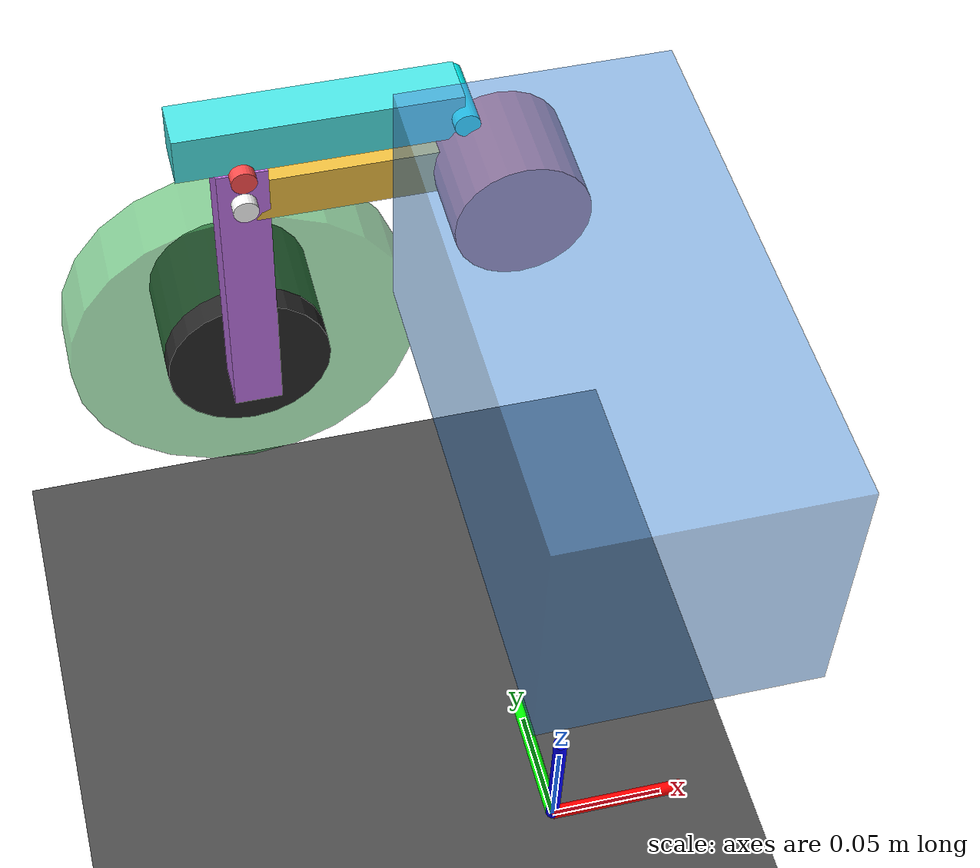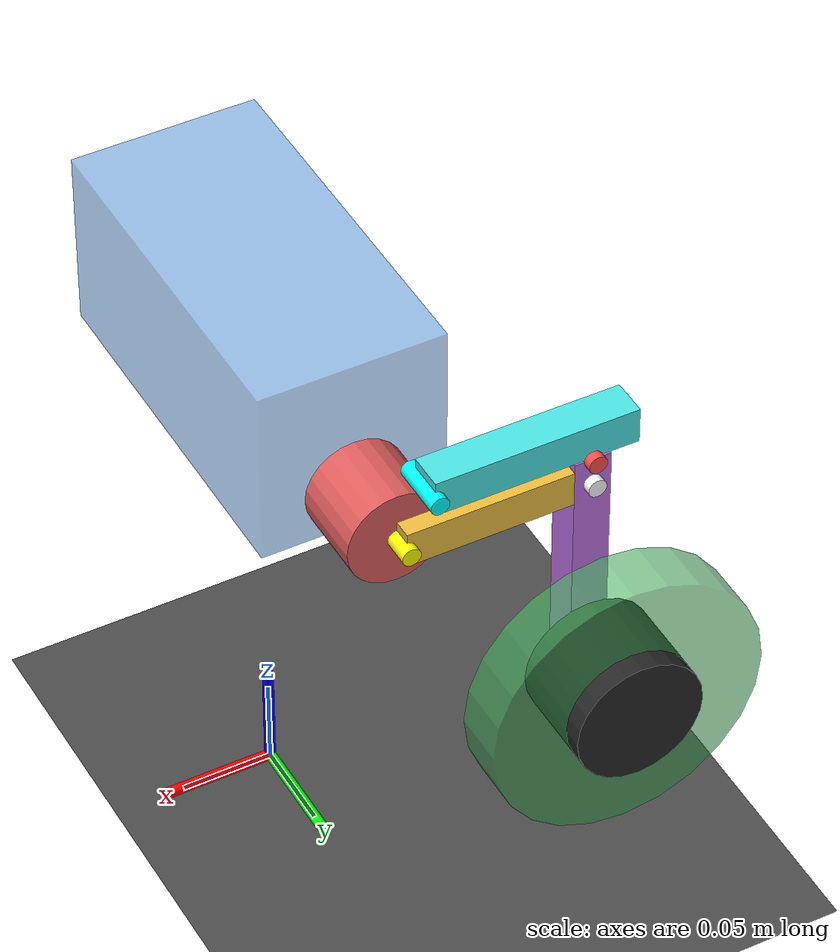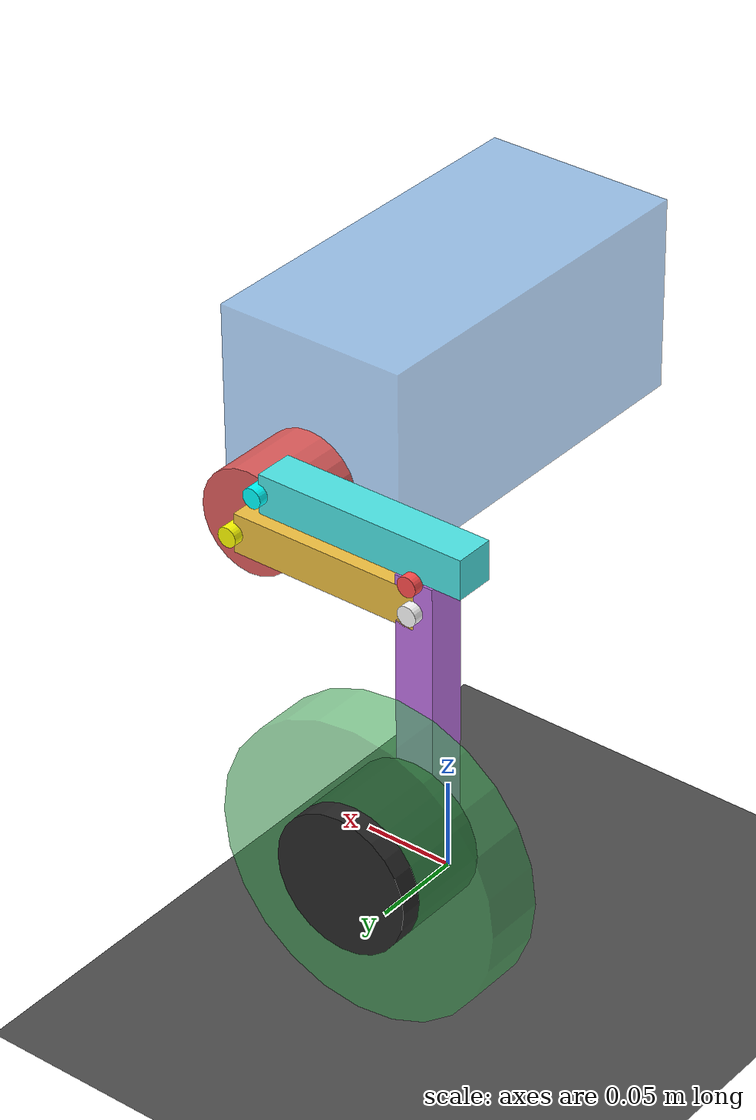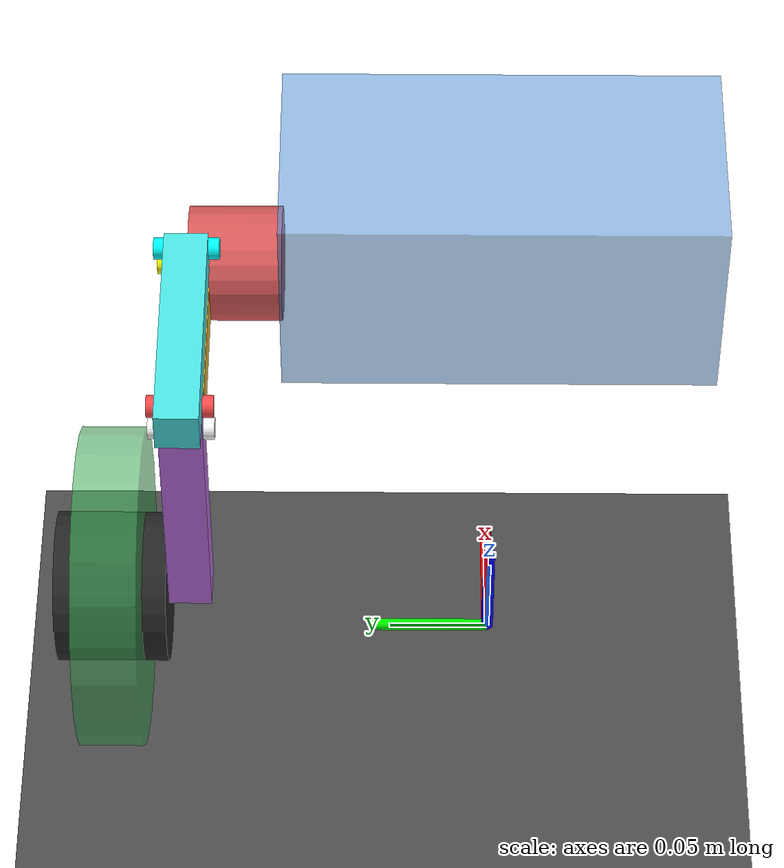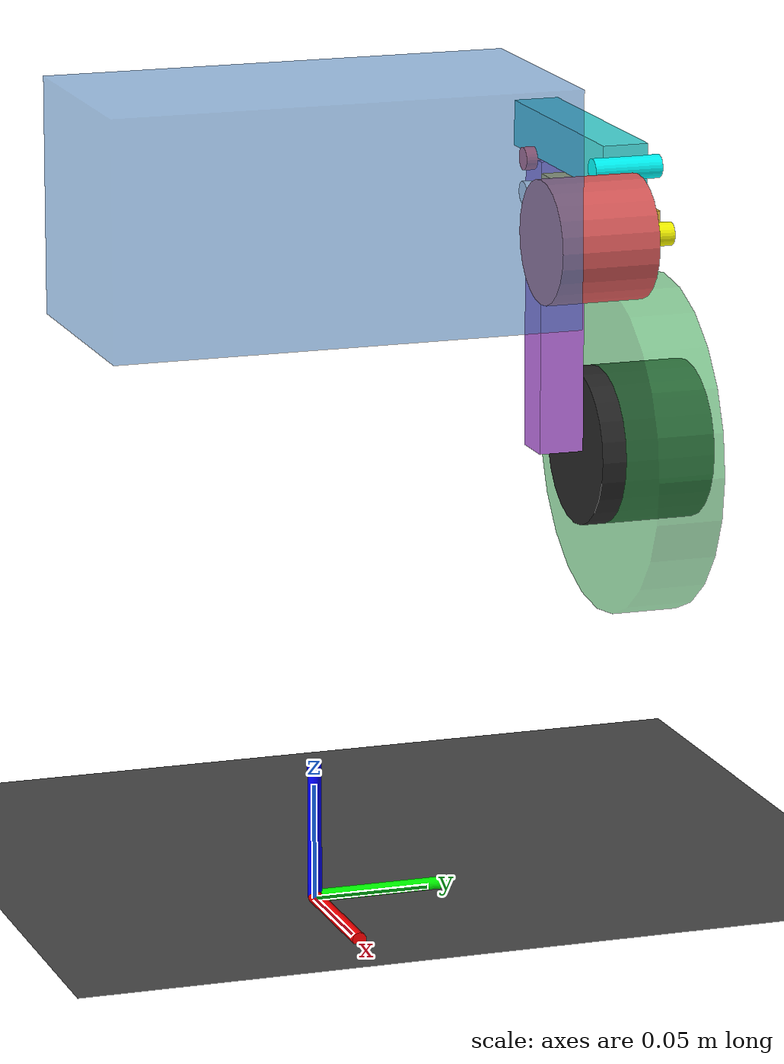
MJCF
<mujoco model="wheeled_leg_robot">

  <option gravity="0 0 -9.81" timestep="0.00005"/>

  <visual>
    <global offwidth="1280" offheight="720" azimuth="270" elevation="0"/>
  </visual>

  <worldbody>

    <light name="main" pos="0 -1 1" dir="0 1 -1" diffuse="0.8 0.8 0.8"/>
    <light name="fill" pos="0  1 1" dir="0 -1 -1" diffuse="0.3 0.3 0.3"/>

    <!-- Ground plane — no collision for this kinematic demo -->
    <geom name="ground" type="plane" pos="0 0 0" size="1 1 0.01"
          rgba="0.3 0.3 0.3 1" contype="0" conaffinity="0"/>

    <!-- XYZ axis markers at origin (visual only) -->
    <!-- X = red, Y = green, Z = blue  |  length 60 mm, radius 3 mm -->
    <geom name="axis_x" type="cylinder" fromto="0 0 0.001  0.06 0 0.001"
          size="0.003" rgba="1 0 0 1" contype="0" conaffinity="0" mass="0"/>
    <geom name="axis_y" type="cylinder" fromto="0 0 0.001  0 0.06 0.001"
          size="0.003" rgba="0 1 0 1" contype="0" conaffinity="0" mass="0"/>
    <geom name="axis_z" type="cylinder" fromto="0 0 0.001  0 0 0.061"
          size="0.003" rgba="0 0 1 1" contype="0" conaffinity="0" mass="0"/>

    <!-- ── Body box ── FIXED to world (no joint) ──────────────────────── -->
    <body name="box" pos="0 0 0.30">

      <!-- Box: 100 mm (X) × 200 mm (Y) × 100 mm (Z), semi-transparent -->
      <geom name="box_geom" type="box"
            size="0.05 0.10 0.05"
            rgba="0.29 0.56 0.85 0.55"
            contype="0" conaffinity="0"
            mass="1.260"/>

      <!-- Hip motor AK45-10: Ø53 mm × 43 mm, mounted on +Y face of box.
           Box +Y face at y=+0.10.  Motor half-length=21.5 mm → centre y=0.1215.
           Outer face (femur pivot A) at y=0.1430. -->
      <geom name="motor_geom" type="cylinder"
            pos="0 0.1215 -0.0235"
            euler="90 0 0"
            size="0.0265 0.0215"
            rgba="0.87 0.36 0.36 0.95"
            contype="0" conaffinity="0"
            mass="0"/>

      <!-- ── Passive coupler pivot F ─────────────────────────────────── -->
      <!-- F = A + (−15 mm, 0, +26 mm)  →  box frame: (−0.015, 0.1430, +0.0025) -->
      <body name="coupler" pos="-0.015 0.1430 0.0025">

        <joint name="hinge_F" type="hinge"
               axis="0 1 0"
               pos="0 0 0"
               damping="25"/>

        <!-- Hinge pin at F (cyan) -->
        <geom type="cylinder" pos="0 0 0" euler="90 0 0" size="0.005 0.015"
              rgba="0 1 1 0.9" contype="0" conaffinity="0" mass="0"/>
        <!-- Coupler link: 110 mm along −X, 10 mm cross-section, cyan -->
        <geom name="coupler_geom" type="box"
              pos="-0.055 0 0"
              size="0.055 0.01 0.01"
              rgba="0.30 0.90 0.90 1.0"
              contype="0" conaffinity="0"
              mass="0.015"/>

      </body><!-- coupler -->

      <!-- ── Femur ─────────────────────────────────────────────────────── -->
      <!-- pivot A at outer face of motor (y=0.1430, z=−0.0235 in box frame) -->
      <body name="femur" pos="0 0.1430 -0.0235">

        <joint name="hip" type="hinge"
               axis="0 1 0"
               pos="0 0 0"
               range="-180 180"
               armature="0.01"
               damping="5"/>

        <!-- Hinge pin at A (yellow) -->
        <geom type="cylinder" pos="0 0 0" euler="90 0 0" size="0.005 0.015"
              rgba="1 1 0 0.9" contype="0" conaffinity="0" mass="0"/>
        <!-- Femur box: pivot A → knee C, 100 mm along −X, 10 mm cross-section -->
        <geom name="femur_geom" type="box"
              pos="-0.05 0 0"
              size="0.05 0.01 0.01"
              rgba="0.94 0.75 0.25 1.0"
              contype="0" conaffinity="0"
              mass="0.025"/>
        <!-- Hinge pin at C/knee (white) -->
        <geom type="cylinder" pos="-0.1 0 0" euler="90 0 0" size="0.005 0.015"
              rgba="1 1 1 0.9" contype="0" conaffinity="0" mass="0"/>

        <!-- ── Tibia ───────────────────────────────────────────────────── -->
        <body name="tibia" pos="-0.1 0 0">

          <joint name="knee_joint" type="hinge"
                 axis="0 1 0"
                 pos="0 0 0"
                 range="-180 180"
                 damping="5"/>

          <!-- Tibia box: stub 15 mm (+Z) / leg 115 mm (−Z), 10 mm cross-section
               Total 130 mm, centre at z = (0.015 − 0.115)/2 = −0.05 -->
          <geom name="tibia_geom" type="box"
                pos="0 0 -0.05"
                size="0.01 0.01 0.065"
                rgba="0.75 0.45 0.90 1.0"
                contype="0" conaffinity="0"
                mass="0.035"/>
          <!-- Hinge pin at E (red) -->
          <geom type="cylinder" pos="0 0 0.015" euler="90 0 0" size="0.005 0.015"
                rgba="1 0.3 0.3 0.9" contype="0" conaffinity="0" mass="0"/>

          <!-- ── Wheel assembly ──────────────────────────────────────── -->
          <!-- Origin at wheel centre W (0, 0, −0.115) in tibia frame. -->
          <body name="wheel_asm" pos="0 0 -0.115">

            <!-- Free-spinning axle — wheel rolls/swings without drive torque -->
            <joint name="wheel_spin" type="hinge"
                   axis="0 1 0"
                   pos="0 0 0"
                   damping="0.05"/>

            <!-- Maytech MTO7052 motor body: Ø70 mm × 52 mm, mass 380 g
                 Tibia +Y face at y=+0.010; motor -Y face flush there
                 → motor centre y = 0.010 + 0.026 = 0.036 -->
            <geom name="motor_body_geom" type="cylinder"
                  pos="0 0.036 0"
                  euler="90 0 0"
                  size="0.035 0.026"
                  rgba="0.15 0.15 0.15 0.95"
                  contype="0" conaffinity="0"
                  mass="0.380"/>

            <!-- TPU wheel tyre: Ø150 mm × 30 mm, mass 30 g — concentric with motor -->
            <geom name="wheel_tire_geom" type="cylinder"
                  pos="0 0.036 0"
                  euler="90 0 0"
                  size="0.075 0.015"
                  rgba="0.25 0.70 0.35 0.60"
                  contype="0" conaffinity="0"
                  mass="0.030"/>

          </body><!-- wheel_asm -->

        </body><!-- tibia -->

      </body><!-- femur -->

    </body><!-- box -->

  </worldbody>

  <!-- Coupler tip (E in coupler frame) → tibia at E. Anchors set in step01_viewer.py. -->
  <equality>
    <connect name="4bar_close" body1="coupler" body2="tibia" anchor="0.11 0 0"
             solref="0.002 1" solimp="0.9999 0.9999 0.001"/>
  </equality>

  <actuator>
    <position name="hip_pos" joint="hip" kp="10000" ctrlrange="-1.27 -0.58"/>
  </actuator>

  <!-- Camera: side view (XZ plane) -->
  <statistic center="0 0 0.20" extent="0.55"/>

</mujoco>
